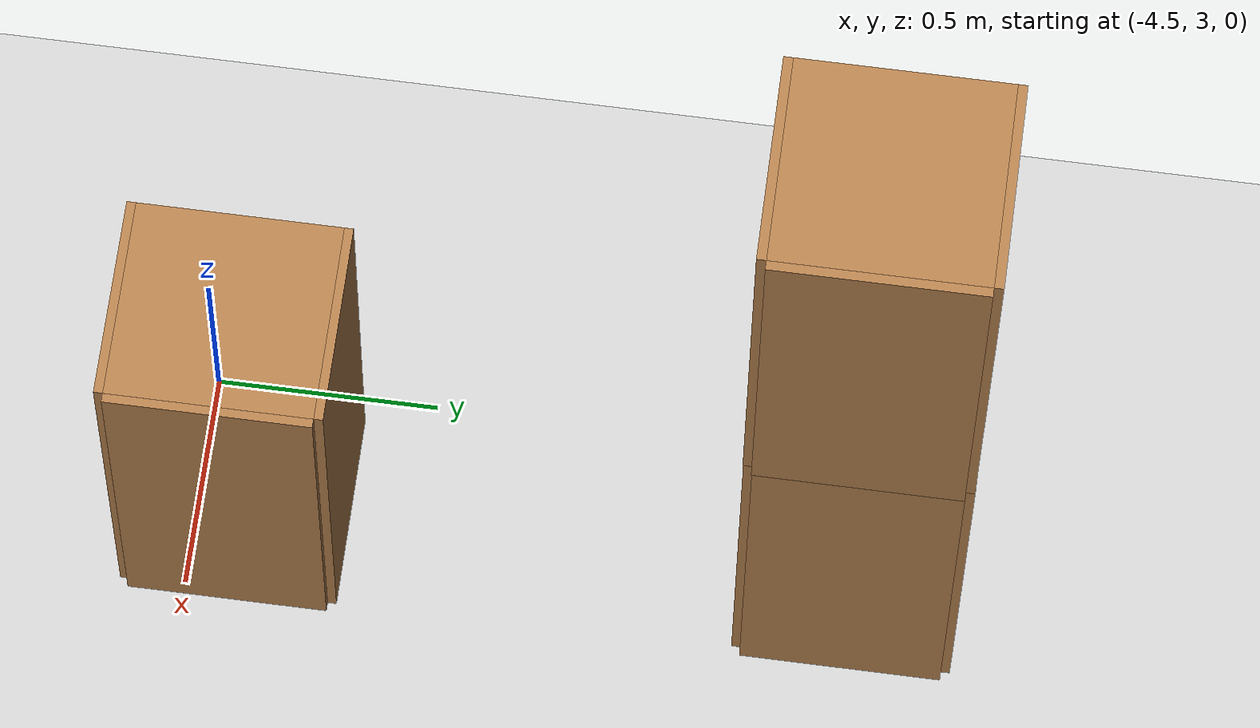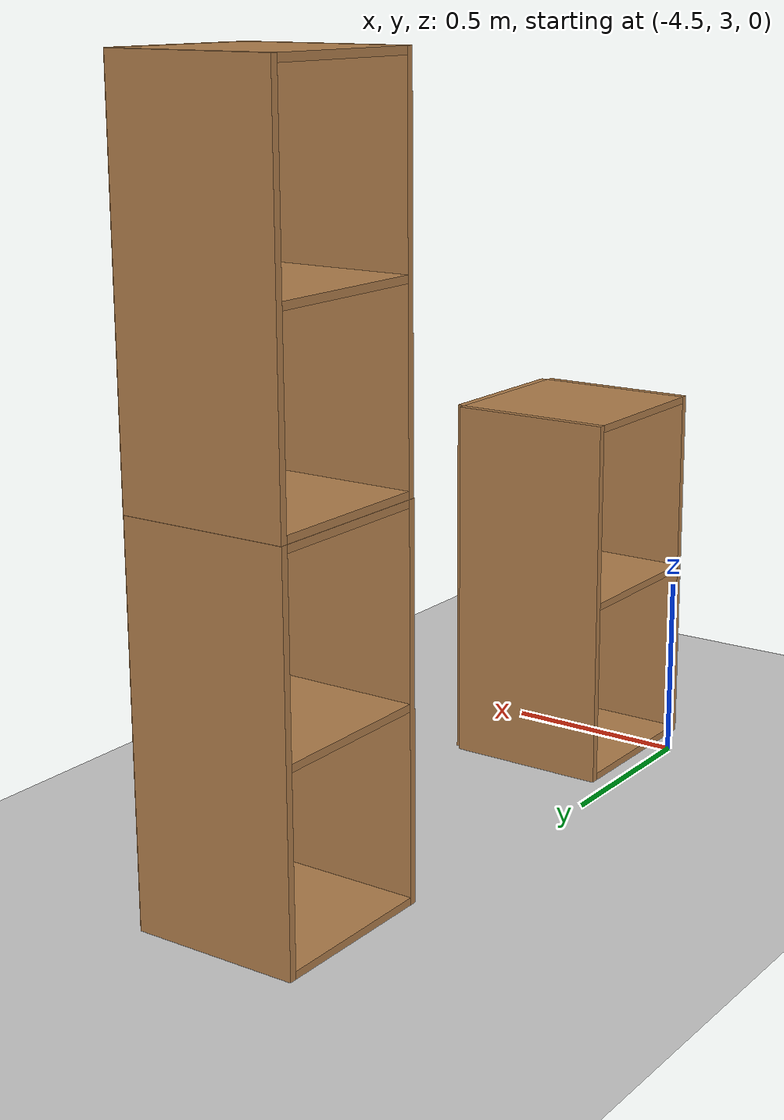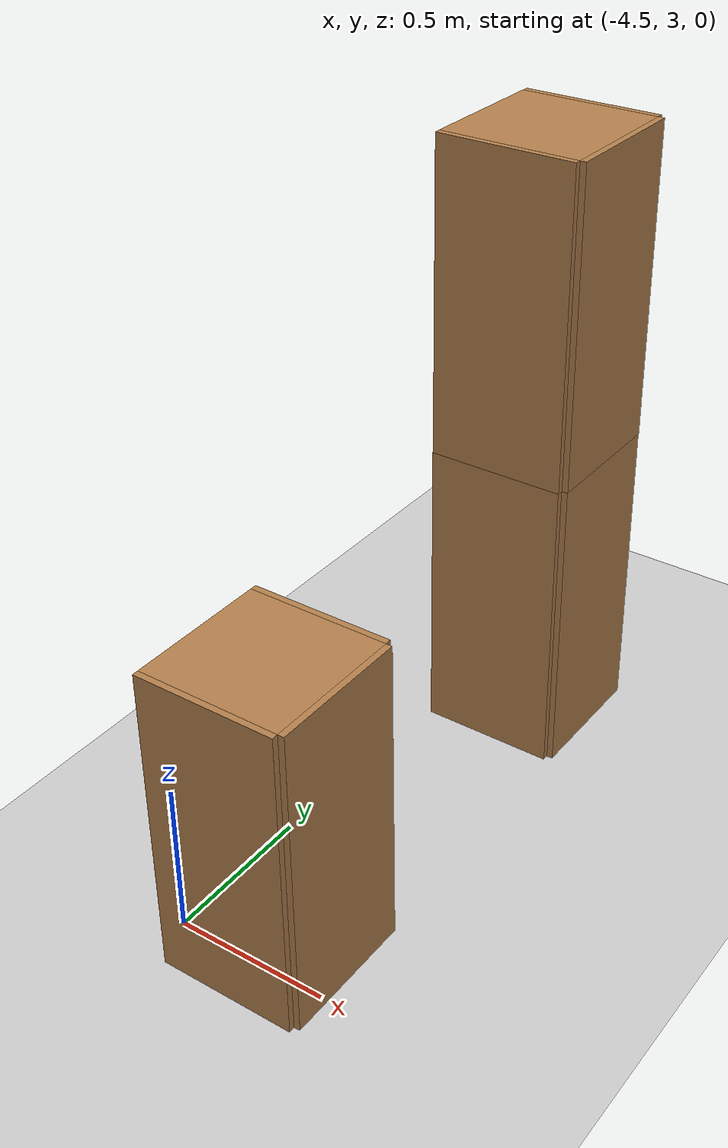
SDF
<sdf version="1.6">
 <world name="default">
  <light name="sun" type="directional">
   <pose>0 0 10 0 -0 0</pose>
   <diffuse>0.8 0.8 0.8 1</diffuse>
   <specular>0.2 0.2 0.2 1</specular>
   <attenuation>
    <range>1000</range>
    <constant>0.9</constant>
    <linear>0.01</linear>
    <quadratic>0.001</quadratic>
   </attenuation>
   <direction>-0.5 0.1 -0.9</direction>
  </light>
  <model name="ground_plane">
   <static>1</static>
   <link name="link">
    <collision name="collision">
     <geometry><plane><normal>0 0 1</normal><size>100 100</size></plane></geometry>
     <surface><friction><ode><mu>100</mu><mu2>50</mu2></ode></friction></surface>
    </collision>
    <visual name="visual">
     <cast_shadows>0</cast_shadows>
     <geometry><plane><normal>0 0 1</normal><size>100 100</size></plane></geometry>
     <material>
      <script><uri>file://media/materials/scripts/gazebo.material</uri><name>Gazebo/Grey</name></script>
     </material>
    </visual>
   </link>
  </model>
  <physics name="default_physics" default="0" type="ode">
   <ode>
    <solver>
     <type>quick</type>
     <iters>10</iters>
     <sor>1.3</sor>
     <use_dynamic_moi_rescaling>0</use_dynamic_moi_rescaling>
    </solver>
    <constraints>
     <cfm>0</cfm>
     <erp>0.2</erp>
     <contact_max_correcting_vel>100</contact_max_correcting_vel>
     <contact_surface_layer>0.001</contact_surface_layer>
    </constraints>
   </ode>
   <max_step_size>0.004</max_step_size>
   <real_time_factor>1</real_time_factor>
   <real_time_update_rate>250</real_time_update_rate>
  </physics>
  <gravity>0 0 -9.8066</gravity>
  <magnetic_field>6e-06 2.3e-05 -4.2e-05</magnetic_field>
  <atmosphere type="adiabatic"/>
  <scene><ambient>0.4 0.4 0.4 1</ambient><background>0.7 0.7 0.7 1</background><shadows>1</shadows></scene>
  <spherical_coordinates>
   <surface_model>EARTH_WGS84</surface_model>
   <latitude_deg>0</latitude_deg>
   <longitude_deg>0</longitude_deg>
   <elevation>0</elevation>
   <heading_deg>0</heading_deg>
  </spherical_coordinates>
  <model name="cabinet">
   <static>1</static>
   <link name="cabinet_bottom_plate">
    <inertial>
     <pose>0 0 -1 0 -0 0</pose>
     <inertia><ixx>2.05</ixx><ixy>0</ixy><ixz>0</ixz><iyy>2.05</iyy><iyz>0</iyz><izz>2.05</izz></inertia>
     <mass>25</mass>
    </inertial>
    <collision name="cabinet_bottom_plate_geom">
     <pose>0 0 0.01 0 -0 0</pose>
     <geometry><box><size>0.45 0.45 0.02</size></box></geometry>
    </collision>
    <visual name="cabinet_bottom_plate_geom_visual">
     <pose>0 0 0.01 0 -0 0</pose>
     <geometry><box><size>0.45 0.45 0.02</size></box></geometry>
     <material>
      <script><uri>file://media/materials/scripts/gazebo.material</uri><name>Gazebo/Wood</name></script>
     </material>
    </visual>
    <collision name="cabinet_bottom_plate_geom_cabinet_back_plate">
     <pose>0.235 0 0.51 0 -0 0</pose>
     <geometry><box><size>0.02 0.45 1.02</size></box></geometry>
    </collision>
    <visual name="cabinet_bottom_plate_geom_cabinet_back_plate_visual">
     <pose>0.235 0 0.51 0 -0 0</pose>
     <geometry><box><size>0.02 0.45 1.02</size></box></geometry>
     <material>
      <script><uri>file://media/materials/scripts/gazebo.material</uri><name>Gazebo/Wood</name></script>
     </material>
    </visual>
    <collision name="cabinet_bottom_plate_geom_cabinet_left_plate">
     <pose>0 0.235 0.51 0 -0 0</pose>
     <geometry><box><size>0.45 0.02 1.02</size></box></geometry>
    </collision>
    <visual name="cabinet_bottom_plate_geom_cabinet_left_plate_visual">
     <pose>0 0.235 0.51 0 -0 0</pose>
     <geometry><box><size>0.45 0.02 1.02</size></box></geometry>
     <material>
      <script><uri>file://media/materials/scripts/gazebo.material</uri><name>Gazebo/Wood</name></script>
     </material>
    </visual>
    <collision name="cabinet_bottom_plate_geom_cabinet_middle_plate">
     <pose>0 0 0.51 0 -0 0</pose>
     <geometry><box><size>0.45 0.45 0.02</size></box></geometry>
    </collision>
    <visual name="cabinet_bottom_plate_geom_cabinet_middle_plate_visual">
     <pose>0 0 0.51 0 -0 0</pose>
     <geometry><box><size>0.45 0.45 0.02</size></box></geometry>
     <material>
      <script><uri>file://media/materials/scripts/gazebo.material</uri><name>Gazebo/Wood</name></script>
     </material>
    </visual>
    <collision name="cabinet_bottom_plate_geom_cabinet_right_plate">
     <pose>0 -0.235 0.51 0 -0 0</pose>
     <geometry><box><size>0.45 0.02 1.02</size></box></geometry>
    </collision>
    <visual name="cabinet_bottom_plate_geom_cabinet_right_plate_visual">
     <pose>0 -0.235 0.51 0 -0 0</pose>
     <geometry><box><size>0.45 0.02 1.02</size></box></geometry>
     <material>
      <script><uri>file://media/materials/scripts/gazebo.material</uri><name>Gazebo/Wood</name></script>
     </material>
    </visual>
    <collision name="cabinet_bottom_plate_geom_cabinet_top_plate">
     <pose>0 0 1.01 0 -0 0</pose>
     <geometry><box><size>0.45 0.45 0.02</size></box></geometry>
    </collision>
    <visual name="cabinet_bottom_plate_geom_cabinet_top_plate_visual">
     <pose>0 0 1.01 0 -0 0</pose>
     <geometry><box><size>0.45 0.45 0.02</size></box></geometry>
     <material>
      <script><uri>file://media/materials/scripts/gazebo.material</uri><name>Gazebo/Wood</name></script>
     </material>
    </visual>
   </link>
   <pose>-4.22011 3.09828 0 0 -0 0</pose>
  </model>
  <model name="cabinet_0">
   <static>1</static>
   <link name="cabinet_bottom_plate">
    <inertial>
     <pose>0 0 -1 0 -0 0</pose>
     <inertia><ixx>2.05</ixx><ixy>0</ixy><ixz>0</ixz><iyy>2.05</iyy><iyz>0</iyz><izz>2.05</izz></inertia>
     <mass>25</mass>
    </inertial>
    <collision name="cabinet_bottom_plate_geom">
     <pose>0 0 0.01 0 -0 0</pose>
     <geometry><box><size>0.45 0.45 0.02</size></box></geometry>
    </collision>
    <visual name="cabinet_bottom_plate_geom_visual">
     <pose>0 0 0.01 0 -0 0</pose>
     <geometry><box><size>0.45 0.45 0.02</size></box></geometry>
     <material>
      <script><uri>file://media/materials/scripts/gazebo.material</uri><name>Gazebo/Wood</name></script>
     </material>
    </visual>
    <collision name="cabinet_bottom_plate_geom_cabinet_back_plate">
     <pose>0.235 0 0.51 0 -0 0</pose>
     <geometry><box><size>0.02 0.45 1.02</size></box></geometry>
    </collision>
    <visual name="cabinet_bottom_plate_geom_cabinet_back_plate_visual">
     <pose>0.235 0 0.51 0 -0 0</pose>
     <geometry><box><size>0.02 0.45 1.02</size></box></geometry>
     <material>
      <script><uri>file://media/materials/scripts/gazebo.material</uri><name>Gazebo/Wood</name></script>
     </material>
    </visual>
    <collision name="cabinet_bottom_plate_geom_cabinet_left_plate">
     <pose>0 0.235 0.51 0 -0 0</pose>
     <geometry><box><size>0.45 0.02 1.02</size></box></geometry>
    </collision>
    <visual name="cabinet_bottom_plate_geom_cabinet_left_plate_visual">
     <pose>0 0.235 0.51 0 -0 0</pose>
     <geometry><box><size>0.45 0.02 1.02</size></box></geometry>
     <material>
      <script><uri>file://media/materials/scripts/gazebo.material</uri><name>Gazebo/Wood</name></script>
     </material>
    </visual>
    <collision name="cabinet_bottom_plate_geom_cabinet_middle_plate">
     <pose>0 0 0.51 0 -0 0</pose>
     <geometry><box><size>0.45 0.45 0.02</size></box></geometry>
    </collision>
    <visual name="cabinet_bottom_plate_geom_cabinet_middle_plate_visual">
     <pose>0 0 0.51 0 -0 0</pose>
     <geometry><box><size>0.45 0.45 0.02</size></box></geometry>
     <material>
      <script><uri>file://media/materials/scripts/gazebo.material</uri><name>Gazebo/Wood</name></script>
     </material>
    </visual>
    <collision name="cabinet_bottom_plate_geom_cabinet_right_plate">
     <pose>0 -0.235 0.51 0 -0 0</pose>
     <geometry><box><size>0.45 0.02 1.02</size></box></geometry>
    </collision>
    <visual name="cabinet_bottom_plate_geom_cabinet_right_plate_visual">
     <pose>0 -0.235 0.51 0 -0 0</pose>
     <geometry><box><size>0.45 0.02 1.02</size></box></geometry>
     <material>
      <script><uri>file://media/materials/scripts/gazebo.material</uri><name>Gazebo/Wood</name></script>
     </material>
    </visual>
    <collision name="cabinet_bottom_plate_geom_cabinet_top_plate">
     <pose>0 0 1.01 0 -0 0</pose>
     <geometry><box><size>0.45 0.45 0.02</size></box></geometry>
    </collision>
    <visual name="cabinet_bottom_plate_geom_cabinet_top_plate_visual">
     <pose>0 0 1.01 0 -0 0</pose>
     <geometry><box><size>0.45 0.45 0.02</size></box></geometry>
     <material>
      <script><uri>file://media/materials/scripts/gazebo.material</uri><name>Gazebo/Wood</name></script>
     </material>
    </visual>
   </link>
   <pose>-4.23654 4.47818 0 0 -0 0</pose>
  </model>
  <model name="cabinet_0_clone">
   <static>1</static>
   <link name="cabinet_bottom_plate">
    <inertial>
     <pose>0 0 -1 0 -0 0</pose>
     <inertia><ixx>2.05</ixx><ixy>0</ixy><ixz>0</ixz><iyy>2.05</iyy><iyz>0</iyz><izz>2.05</izz></inertia>
     <mass>25</mass>
    </inertial>
    <collision name="cabinet_bottom_plate_geom">
     <pose>0 0 0.01 0 -0 0</pose>
     <geometry><box><size>0.45 0.45 0.02</size></box></geometry>
    </collision>
    <visual name="cabinet_bottom_plate_geom_visual">
     <pose>0 0 0.01 0 -0 0</pose>
     <geometry><box><size>0.45 0.45 0.02</size></box></geometry>
     <material>
      <script><uri>file://media/materials/scripts/gazebo.material</uri><name>Gazebo/Wood</name></script>
     </material>
    </visual>
    <collision name="cabinet_bottom_plate_geom_cabinet_back_plate">
     <pose>0.235 0 0.51 0 -0 0</pose>
     <geometry><box><size>0.02 0.45 1.02</size></box></geometry>
    </collision>
    <visual name="cabinet_bottom_plate_geom_cabinet_back_plate_visual">
     <pose>0.235 0 0.51 0 -0 0</pose>
     <geometry><box><size>0.02 0.45 1.02</size></box></geometry>
     <material>
      <script><uri>file://media/materials/scripts/gazebo.material</uri><name>Gazebo/Wood</name></script>
     </material>
    </visual>
    <collision name="cabinet_bottom_plate_geom_cabinet_left_plate">
     <pose>0 0.235 0.51 0 -0 0</pose>
     <geometry><box><size>0.45 0.02 1.02</size></box></geometry>
    </collision>
    <visual name="cabinet_bottom_plate_geom_cabinet_left_plate_visual">
     <pose>0 0.235 0.51 0 -0 0</pose>
     <geometry><box><size>0.45 0.02 1.02</size></box></geometry>
     <material>
      <script><uri>file://media/materials/scripts/gazebo.material</uri><name>Gazebo/Wood</name></script>
     </material>
    </visual>
    <collision name="cabinet_bottom_plate_geom_cabinet_middle_plate">
     <pose>0 0 0.51 0 -0 0</pose>
     <geometry><box><size>0.45 0.45 0.02</size></box></geometry>
    </collision>
    <visual name="cabinet_bottom_plate_geom_cabinet_middle_plate_visual">
     <pose>0 0 0.51 0 -0 0</pose>
     <geometry><box><size>0.45 0.45 0.02</size></box></geometry>
     <material>
      <script><uri>file://media/materials/scripts/gazebo.material</uri><name>Gazebo/Wood</name></script>
     </material>
    </visual>
    <collision name="cabinet_bottom_plate_geom_cabinet_right_plate">
     <pose>0 -0.235 0.51 0 -0 0</pose>
     <geometry><box><size>0.45 0.02 1.02</size></box></geometry>
    </collision>
    <visual name="cabinet_bottom_plate_geom_cabinet_right_plate_visual">
     <pose>0 -0.235 0.51 0 -0 0</pose>
     <geometry><box><size>0.45 0.02 1.02</size></box></geometry>
     <material>
      <script><uri>file://media/materials/scripts/gazebo.material</uri><name>Gazebo/Wood</name></script>
     </material>
    </visual>
    <collision name="cabinet_bottom_plate_geom_cabinet_top_plate">
     <pose>0 0 1.01 0 -0 0</pose>
     <geometry><box><size>0.45 0.45 0.02</size></box></geometry>
    </collision>
    <visual name="cabinet_bottom_plate_geom_cabinet_top_plate_visual">
     <pose>0 0 1.01 0 -0 0</pose>
     <geometry><box><size>0.45 0.45 0.02</size></box></geometry>
     <material>
      <script><uri>file://media/materials/scripts/gazebo.material</uri><name>Gazebo/Wood</name></script>
     </material>
    </visual>
   </link>
   <pose>-4.23478 4.47711 1.01986 0 -0 0</pose>
  </model>
 </world>
</sdf>
